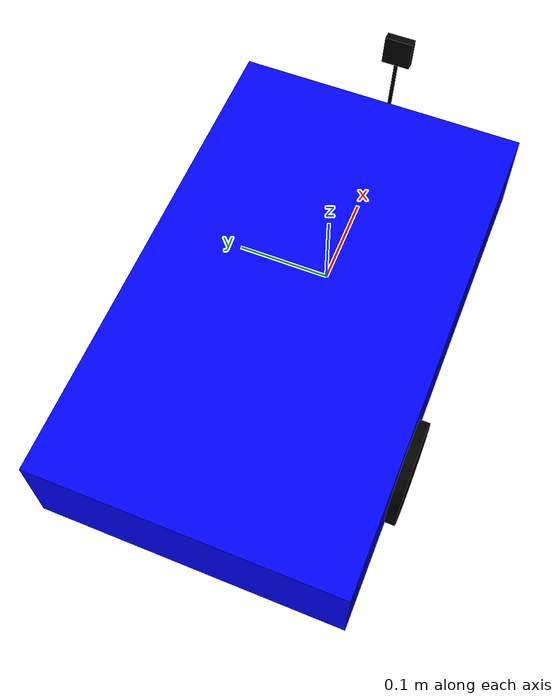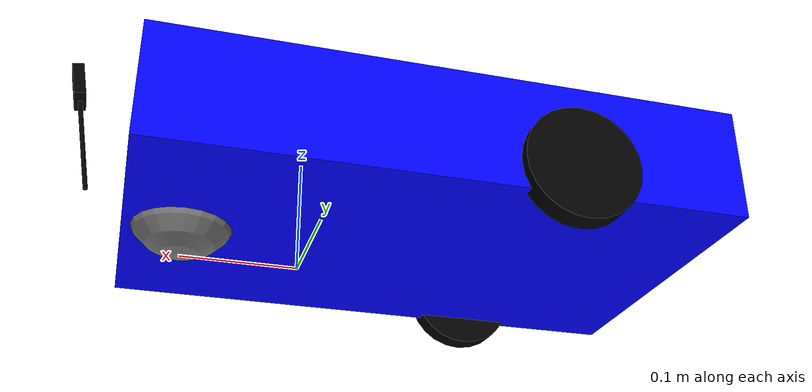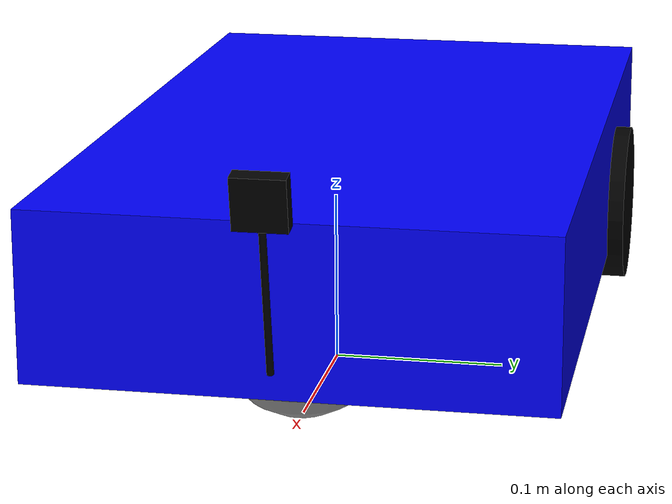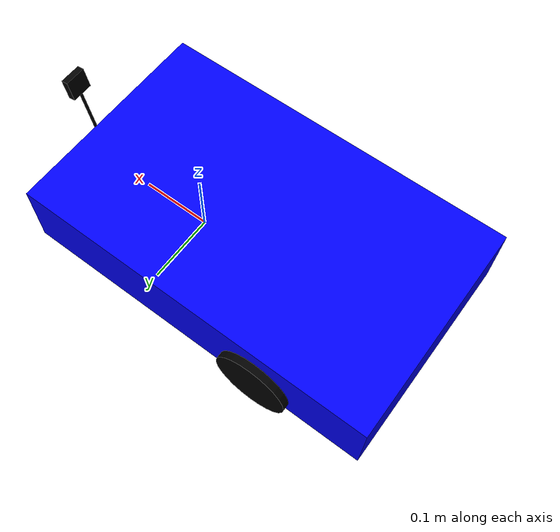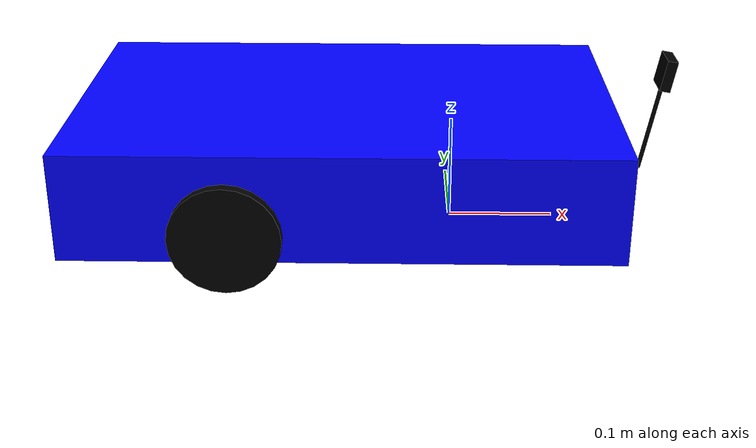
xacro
<?xml version="1.0"?>
    <robot xmlns:xacro="http://wiki.ros.org/xacro" name="gen6s_diff">
        <xacro:arg name="sim_mode" default="false"/>
        <xacro:include filename="inertial_macros.xacro"/>
        <xacro:include filename="camera.xacro"/>
        <!-- Include camera.xacro -->

        <!-- Colors -->
        <material name="blue">
            <color rgba="0.0 0.0 1.0 1.0"/> <!-- RGBA for blue -->
        </material>
        <material name="black">
            <color rgba="0.0 0.0 0.0 1.0"/> <!-- RGBA for black -->
        </material>
        <material name="gray">
            <color rgba="0.5 0.5 0.5 1.0"/> <!-- RGBA for gray -->
        </material>

        <!-- Base Link -->

        <link name="base_link">
            <collision>
                <origin xyz="0 0 ${height1/2}" rpy="0 0 0"/>
                <geometry>
                <box size="${width} ${width} ${height1}"/>
                </geometry>
            </collision>
        </link>

        <!-- CHASSIS LINK -->

        <link name="chassis">
            <visual>
                <origin xyz="0 0 0.075" rpy="0 0 0"/>
                <geometry>
                    <box size="0.5 0.3 0.1"/>
                </geometry>
                <material name="blue"/>
            </visual>
            <collision>
                <origin xyz="0 0 0.075" rpy="0 0 0"/>
                <geometry>
                    <box size="0.5 0.3 0.1"/>
                </geometry>
            </collision>
            <inertial>
                <mass value="5.0"/>
                <inertia ixx="0.1" ixy="0.0" ixz="0.0" iyy="0.1" iyz="0.0" izz="0.1"/>
                <origin xyz="0 0 0" rpy="0 0 0"/>
            </inertial>
        </link>

        <!-- Left Wheel -->
        <link name="left_wheel">
            <visual>
                <geometry>
                    <cylinder radius="0.05" length="0.02"/>
                </geometry>
                <material name="black"/>
            </visual>
            <collision>
                <geometry>
                    <cylinder radius="0.05" length="0.02"/>
                </geometry>
            </collision>
            <xacro:inertial_cylinder mass="0.5" length="0.02" radius="0.05">
                <origin xyz="0 0 0" rpy="0 0 0"/>
            </xacro:inertial_cylinder>
        </link>

        <!-- Right Wheel -->
        <link name="right_wheel">
            <visual>
                <geometry>
                    <cylinder radius="0.05" length="0.02"/>
                </geometry>
                <material name="black"/>
            </visual>
            <collision>
                <geometry>
                    <cylinder radius="0.05" length="0.02"/>
                </geometry>
            </collision>
            <xacro:inertial_cylinder mass="0.5" length="0.02" radius="0.05">
                <origin xyz="0 0 0" rpy="0 0 0"/>
            </xacro:inertial_cylinder>
        </link>

        <!-- Caster Wheel -->
        <link name="caster_wheel">
            <visual>
                <geometry>
                    <sphere radius="0.05"/>
                </geometry>
                <material name="gray"/>
            </visual>
            <!-- add inertial for caster wheel -->
            <xacro:inertial_sphere mass="0.5" radius="0.05">
                <origin xyz="0.1 0 0.05"/>
            </xacro:inertial_sphere>

        </link>

        <!-- Joints -->
        <joint name="chassis_joint" type="fixed">
            <parent link="base_link"/>
            <child link="chassis"/>
            <origin xyz="-0.1 0 0"/> <!-- Offset in x direction-->
        </joint>
        <joint name="left_wheel_joint" type="continuous">
            <parent link="base_link"/>
            <child link="left_wheel"/>
            <origin xyz="-0.2 0.15 0.05" rpy="1.57 0 0"/>
            <!-- in controls we will use this y x 2 as the separation i.e 0.3-->
            <axis xyz="0 1 0"/>
        </joint>

        <joint name="right_wheel_joint" type="continuous">
            <parent link="base_link"/>
            <child link="right_wheel"/>
            <origin xyz="-0.2 -0.15 0.05" rpy="1.57 0 0"/>
            <axis xyz="0 1 0"/>
        </joint>

        <joint name="caster_wheel_joint" type="continuous">
            <parent link="base_link"/>
            <child link="caster_wheel"/>
            <origin xyz="0.1 0 0.05"/>
            <axis xyz="0 1 0"/>
        </joint>

        <!-- Gazebo reference: -->

        <gazebo reference="caster_wheel">
            <material>Gazebo/Gray</material>
        </gazebo>

        <plugin
            filename="gz-sim-diff-drive-system"
            name="gz::sim::systems::DiffDrive">
            <left_joint>left_wheel_joint</left_joint>
            <right_joint>right_wheel_joint</right_joint>
            <wheel_separation>0.3</wheel_separation>
            <wheel_radius>0.05</wheel_radius>
            <odom_publish_frequency>1</odom_publish_frequency>
            <topic>cmd_vel</topic>
        </plugin>
    </robot>

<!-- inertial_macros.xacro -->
<robot xmlns:xacro="http://www.ros.org/wiki/xacro" >

    <!-- Specify some standard inertial calculations https://en.wikipedia.org/wiki/List_of_moments_of_inertia -->
    <!-- These make use of xacro's mathematical functionality -->

    <xacro:macro name="inertial_sphere" params="mass radius *origin">
        <inertial>
            <xacro:insert_block name="origin"/>
            <mass value="${mass}" />
            <inertia ixx="${(2/5) * mass * (radius*radius)}" ixy="0.0" ixz="0.0"
                    iyy="${(2/5) * mass * (radius*radius)}" iyz="0.0"
                    izz="${(2/5) * mass * (radius*radius)}" />
        </inertial>
    </xacro:macro>

    <xacro:macro name="inertial_box" params="mass x y z *origin">
        <inertial>
            <xacro:insert_block name="origin"/>
            <mass value="${mass}" />
            <inertia ixx="${(1/12) * mass * (y*y+z*z)}" ixy="0.0" ixz="0.0"
                    iyy="${(1/12) * mass * (x*x+z*z)}" iyz="0.0"
                    izz="${(1/12) * mass * (x*x+y*y)}" />
        </inertial>
    </xacro:macro>

    <xacro:macro name="inertial_cylinder" params="mass length radius *origin">
        <inertial>
            <xacro:insert_block name="origin"/>
            <mass value="${mass}" />
            <inertia ixx="${(1/12) * mass * (3*radius*radius + length*length)}" ixy="0.0" ixz="0.0"
                    iyy="${(1/12) * mass * (3*radius*radius + length*length)}" iyz="0.0"
                    izz="${(1/2) * mass * (radius*radius)}" />
        </inertial>
    </xacro:macro>

</robot>

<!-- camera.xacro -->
<robot xmlns:xacro="http://www.ros.org/wiki/xacro" >

    <joint name="camera_joint" type="fixed">
        <parent link="chassis"/>
        <child link="camera_link"/>
        <origin xyz="0.3 0 0.15" rpy="0 0.18 0"/>
    </joint>
    <!-- using the ros standard coordinates above -->

    <link name="camera_link">
        <visual>
            <geometry>
                <box size="0.010 0.03 0.03"/>
            </geometry>
            <material name="black"/>
        </visual>
        <visual>
            <origin xyz="0 0 -0.05"/>
            <geometry>
                <cylinder radius="0.002" length="0.1"/>
            </geometry>
            <material name="black"/>
        </visual>
    </link>

<!-- converting to the camera coordinates -->
    <joint name="camera_optical_joint" type="fixed">
        <parent link="camera_link"/>
        <child link="camera_link_optical"/>
        <origin xyz="0 0 0" rpy="${-pi/2} 0 ${-pi/2}"/>
    </joint>

    <link name="camera_link_optical"></link>

    <gazebo reference="camera_link">
        <material>Gazebo/Black</material>

        <sensor name="camera" type="camera">
            <pose> 0 0 0 0 0 0 </pose>
            <visualize>true</visualize>
            <update_rate>10</update_rate>
            <camera>
                <camera_info_topic>camera/camera_info</camera_info_topic>
                <horizontal_fov>1.089</horizontal_fov>
                <image>
                    <format>R8G8B8</format>
                    <width>640</width>
                    <height>480</height>
                </image>
                <clip>
                    <near>0.05</near>
                    <far>8.0</far>
                </clip>
            </camera>
            <topic>camera/image_raw</topic>
            <gz_frame_id>camera_link_optical</gz_frame_id>
        </sensor>
    </gazebo>

</robot>
